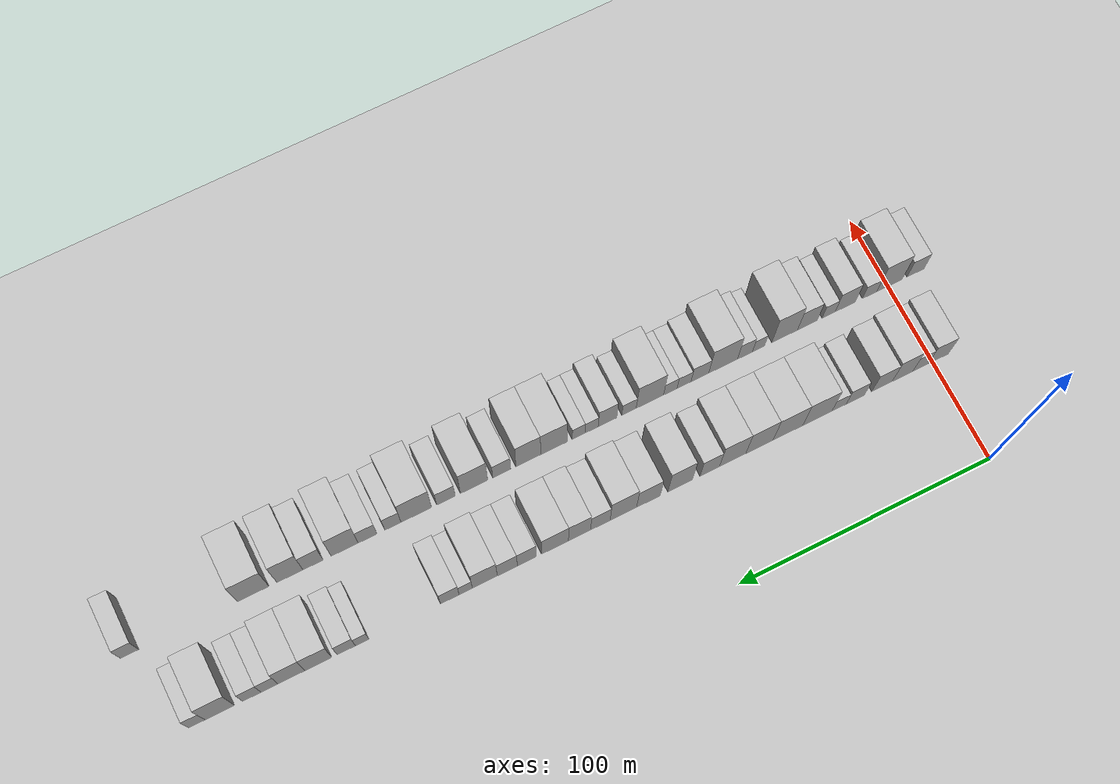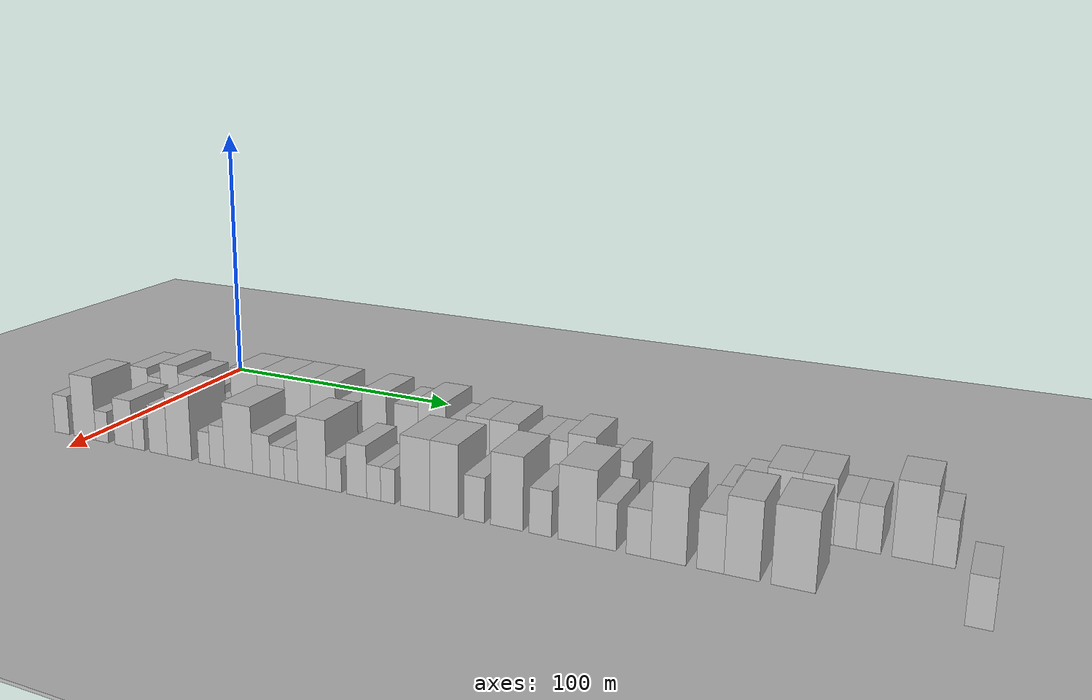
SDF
<sdf version="1.6">
 <world name="default">
  <include><name>ground_plane_1</name><uri>model://HANNAS_ground_plane</uri></include>
  <include>
   <name>ground_plane_2</name>
   <uri>model://HANNAS_ground_plane</uri>
   <pose>100 0 0  0 0 0</pose>
  </include>
  <model name="building_33">
   <static>1</static>
   <pose>50.0000 -2.1452 0 0.000000 0.000000 0.000000</pose>
   <link name="link">
    <pose>0 0 9.00 0 0 0</pose>
    <collision name="collision"><geometry><box><size>20.0000 8.3647 18.0000</size></box></geometry></collision>
    <visual name="visual">
     <cast_shadows>0</cast_shadows>
     <geometry><box><size>20.0000 8.3647 18.0000</size></box></geometry>
     <material>
      <script>
       <uri>model://HANNAS_wall/materials/scripts</uri>
       <uri>model://HANNAS_wall/materials/textures</uri>
       <name>vrc/HANNAS_wall</name>
      </script>
     </material>
    </visual>
   </link>
  </model>
  <model name="building_34">
   <static>1</static>
   <pose>50.0000 5.1659 0 0.000000 0.000000 0.000000</pose>
   <link name="link">
    <pose>0 0 7.50 0 0 0</pose>
    <collision name="collision"><geometry><box><size>20.0000 6.2576 15.0000</size></box></geometry></collision>
    <visual name="visual">
     <cast_shadows>0</cast_shadows>
     <geometry><box><size>20.0000 6.2576 15.0000</size></box></geometry>
     <material>
      <script>
       <uri>model://HANNAS_wall/materials/scripts</uri>
       <uri>model://HANNAS_wall/materials/textures</uri>
       <name>vrc/HANNAS_wall</name>
      </script>
     </material>
    </visual>
   </link>
  </model>
  <model name="building_35">
   <static>1</static>
   <pose>50.0000 12.5445 0 0.000000 0.000000 0.000000</pose>
   <link name="link">
    <pose>0 0 10.50 0 0 0</pose>
    <collision name="collision"><geometry><box><size>20.0000 8.4996 21.0000</size></box></geometry></collision>
    <visual name="visual">
     <cast_shadows>0</cast_shadows>
     <geometry><box><size>20.0000 8.4996 21.0000</size></box></geometry>
     <material>
      <script>
       <uri>model://HANNAS_wall/materials/scripts</uri>
       <uri>model://HANNAS_wall/materials/textures</uri>
       <name>vrc/HANNAS_wall</name>
      </script>
     </material>
    </visual>
   </link>
  </model>
  <model name="building_36">
   <static>1</static>
   <pose>50.0000 20.9216 0 0.000000 0.000000 0.000000</pose>
   <link name="link">
    <pose>0 0 9.00 0 0 0</pose>
    <collision name="collision"><geometry><box><size>20.0000 8.2547 18.0000</size></box></geometry></collision>
    <visual name="visual">
     <cast_shadows>0</cast_shadows>
     <geometry><box><size>20.0000 8.2547 18.0000</size></box></geometry>
     <material>
      <script>
       <uri>model://HANNAS_wall/materials/scripts</uri>
       <uri>model://HANNAS_wall/materials/textures</uri>
       <name>vrc/HANNAS_wall</name>
      </script>
     </material>
    </visual>
   </link>
  </model>
  <model name="building_37">
   <static>1</static>
   <pose>50.0000 31.7448 0 0.000000 0.000000 0.000000</pose>
   <link name="link">
    <pose>0 0 7.50 0 0 0</pose>
    <collision name="collision"><geometry><box><size>20.0000 7.3918 15.0000</size></box></geometry></collision>
    <visual name="visual">
     <cast_shadows>0</cast_shadows>
     <geometry><box><size>20.0000 7.3918 15.0000</size></box></geometry>
     <material>
      <script>
       <uri>model://HANNAS_wall/materials/scripts</uri>
       <uri>model://HANNAS_wall/materials/textures</uri>
       <name>vrc/HANNAS_wall</name>
      </script>
     </material>
    </visual>
   </link>
  </model>
  <model name="building_38">
   <static>1</static>
   <pose>50.0000 38.3287 0 0.000000 0.000000 0.000000</pose>
   <link name="link">
    <pose>0 0 6.00 0 0 0</pose>
    <collision name="collision"><geometry><box><size>20.0000 5.7759 12.0000</size></box></geometry></collision>
    <visual name="visual">
     <cast_shadows>0</cast_shadows>
     <geometry><box><size>20.0000 5.7759 12.0000</size></box></geometry>
     <material>
      <script>
       <uri>model://HANNAS_wall/materials/scripts</uri>
       <uri>model://HANNAS_wall/materials/textures</uri>
       <name>vrc/HANNAS_wall</name>
      </script>
     </material>
    </visual>
   </link>
  </model>
  <model name="building_39">
   <static>1</static>
   <pose>50.0000 47.1344 0 0.000000 0.000000 0.000000</pose>
   <link name="link">
    <pose>0 0 12.00 0 0 0</pose>
    <collision name="collision"><geometry><box><size>20.0000 11.8356 24.0000</size></box></geometry></collision>
    <visual name="visual">
     <cast_shadows>0</cast_shadows>
     <geometry><box><size>20.0000 11.8356 24.0000</size></box></geometry>
     <material>
      <script>
       <uri>model://HANNAS_wall/materials/scripts</uri>
       <uri>model://HANNAS_wall/materials/textures</uri>
       <name>vrc/HANNAS_wall</name>
      </script>
     </material>
    </visual>
   </link>
  </model>
  <model name="building_40">
   <static>1</static>
   <pose>50.0000 58.9942 0 0.000000 0.000000 0.000000</pose>
   <link name="link">
    <pose>0 0 12.00 0 0 0</pose>
    <collision name="collision"><geometry><box><size>20.0000 11.8840 24.0000</size></box></geometry></collision>
    <visual name="visual">
     <cast_shadows>0</cast_shadows>
     <geometry><box><size>20.0000 11.8840 24.0000</size></box></geometry>
     <material>
      <script>
       <uri>model://HANNAS_wall/materials/scripts</uri>
       <uri>model://HANNAS_wall/materials/textures</uri>
       <name>vrc/HANNAS_wall</name>
      </script>
     </material>
    </visual>
   </link>
  </model>
  <model name="building_41">
   <static>1</static>
   <pose>50.0000 70.3936 0 0.000000 0.000000 0.000000</pose>
   <link name="link">
    <pose>0 0 12.00 0 0 0</pose>
    <collision name="collision"><geometry><box><size>20.0000 10.9147 24.0000</size></box></geometry></collision>
    <visual name="visual">
     <cast_shadows>0</cast_shadows>
     <geometry><box><size>20.0000 10.9147 24.0000</size></box></geometry>
     <material>
      <script>
       <uri>model://HANNAS_wall/materials/scripts</uri>
       <uri>model://HANNAS_wall/materials/textures</uri>
       <name>vrc/HANNAS_wall</name>
      </script>
     </material>
    </visual>
   </link>
  </model>
  <model name="building_42">
   <static>1</static>
   <pose>50.0000 81.1011 0 0.000000 0.000000 0.000000</pose>
   <link name="link">
    <pose>0 0 12.00 0 0 0</pose>
    <collision name="collision"><geometry><box><size>20.0000 10.5003 24.0000</size></box></geometry></collision>
    <visual name="visual">
     <cast_shadows>0</cast_shadows>
     <geometry><box><size>20.0000 10.5003 24.0000</size></box></geometry>
     <material>
      <script>
       <uri>model://HANNAS_wall/materials/scripts</uri>
       <uri>model://HANNAS_wall/materials/textures</uri>
       <name>vrc/HANNAS_wall</name>
      </script>
     </material>
    </visual>
   </link>
  </model>
  <model name="building_43">
   <static>1</static>
   <pose>50.0000 90.2170 0 0.000000 0.000000 0.000000</pose>
   <link name="link">
    <pose>0 0 9.00 0 0 0</pose>
    <collision name="collision"><geometry><box><size>20.0000 7.7314 18.0000</size></box></geometry></collision>
    <visual name="visual">
     <cast_shadows>0</cast_shadows>
     <geometry><box><size>20.0000 7.7314 18.0000</size></box></geometry>
     <material>
      <script>
       <uri>model://HANNAS_wall/materials/scripts</uri>
       <uri>model://HANNAS_wall/materials/textures</uri>
       <name>vrc/HANNAS_wall</name>
      </script>
     </material>
    </visual>
   </link>
  </model>
  <model name="building_44">
   <static>1</static>
   <pose>50.0000 101.9413 0 0.000000 0.000000 0.000000</pose>
   <link name="link">
    <pose>0 0 12.00 0 0 0</pose>
    <collision name="collision"><geometry><box><size>20.0000 9.7173 24.0000</size></box></geometry></collision>
    <visual name="visual">
     <cast_shadows>0</cast_shadows>
     <geometry><box><size>20.0000 9.7173 24.0000</size></box></geometry>
     <material>
      <script>
       <uri>model://HANNAS_wall/materials/scripts</uri>
       <uri>model://HANNAS_wall/materials/textures</uri>
       <name>vrc/HANNAS_wall</name>
      </script>
     </material>
    </visual>
   </link>
  </model>
  <model name="building_45">
   <static>1</static>
   <pose>50.0000 114.4521 0 0.000000 0.000000 0.000000</pose>
   <link name="link">
    <pose>0 0 10.50 0 0 0</pose>
    <collision name="collision"><geometry><box><size>20.0000 9.3042 21.0000</size></box></geometry></collision>
    <visual name="visual">
     <cast_shadows>0</cast_shadows>
     <geometry><box><size>20.0000 9.3042 21.0000</size></box></geometry>
     <material>
      <script>
       <uri>model://HANNAS_wall/materials/scripts</uri>
       <uri>model://HANNAS_wall/materials/textures</uri>
       <name>vrc/HANNAS_wall</name>
      </script>
     </material>
    </visual>
   </link>
  </model>
  <model name="building_46">
   <static>1</static>
   <pose>50.0000 124.3024 0 0.000000 0.000000 0.000000</pose>
   <link name="link">
    <pose>0 0 12.00 0 0 0</pose>
    <collision name="collision"><geometry><box><size>20.0000 10.3964 24.0000</size></box></geometry></collision>
    <visual name="visual">
     <cast_shadows>0</cast_shadows>
     <geometry><box><size>20.0000 10.3964 24.0000</size></box></geometry>
     <material>
      <script>
       <uri>model://HANNAS_wall/materials/scripts</uri>
       <uri>model://HANNAS_wall/materials/textures</uri>
       <name>vrc/HANNAS_wall</name>
      </script>
     </material>
    </visual>
   </link>
  </model>
  <model name="building_47">
   <static>1</static>
   <pose>50.0000 133.2978 0 0.000000 0.000000 0.000000</pose>
   <link name="link">
    <pose>0 0 9.00 0 0 0</pose>
    <collision name="collision"><geometry><box><size>20.0000 7.5946 18.0000</size></box></geometry></collision>
    <visual name="visual">
     <cast_shadows>0</cast_shadows>
     <geometry><box><size>20.0000 7.5946 18.0000</size></box></geometry>
     <material>
      <script>
       <uri>model://HANNAS_wall/materials/scripts</uri>
       <uri>model://HANNAS_wall/materials/textures</uri>
       <name>vrc/HANNAS_wall</name>
      </script>
     </material>
    </visual>
   </link>
  </model>
  <model name="building_48">
   <static>1</static>
   <pose>50.0000 141.4103 0 0.000000 0.000000 0.000000</pose>
   <link name="link">
    <pose>0 0 10.50 0 0 0</pose>
    <collision name="collision"><geometry><box><size>20.0000 8.6304 21.0000</size></box></geometry></collision>
    <visual name="visual">
     <cast_shadows>0</cast_shadows>
     <geometry><box><size>20.0000 8.6304 21.0000</size></box></geometry>
     <material>
      <script>
       <uri>model://HANNAS_wall/materials/scripts</uri>
       <uri>model://HANNAS_wall/materials/textures</uri>
       <name>vrc/HANNAS_wall</name>
      </script>
     </material>
    </visual>
   </link>
  </model>
  <model name="building_49">
   <static>1</static>
   <pose>50.0000 150.9284 0 0.000000 0.000000 0.000000</pose>
   <link name="link">
    <pose>0 0 10.50 0 0 0</pose>
    <collision name="collision"><geometry><box><size>20.0000 10.4057 21.0000</size></box></geometry></collision>
    <visual name="visual">
     <cast_shadows>0</cast_shadows>
     <geometry><box><size>20.0000 10.4057 21.0000</size></box></geometry>
     <material>
      <script>
       <uri>model://HANNAS_wall/materials/scripts</uri>
       <uri>model://HANNAS_wall/materials/textures</uri>
       <name>vrc/HANNAS_wall</name>
      </script>
     </material>
    </visual>
   </link>
  </model>
  <model name="building_50">
   <static>1</static>
   <pose>50.0000 161.7996 0 0.000000 0.000000 0.000000</pose>
   <link name="link">
    <pose>0 0 9.00 0 0 0</pose>
    <collision name="collision"><geometry><box><size>20.0000 7.3368 18.0000</size></box></geometry></collision>
    <visual name="visual">
     <cast_shadows>0</cast_shadows>
     <geometry><box><size>20.0000 7.3368 18.0000</size></box></geometry>
     <material>
      <script>
       <uri>model://HANNAS_wall/materials/scripts</uri>
       <uri>model://HANNAS_wall/materials/textures</uri>
       <name>vrc/HANNAS_wall</name>
      </script>
     </material>
    </visual>
   </link>
  </model>
  <model name="building_51">
   <static>1</static>
   <pose>50.0000 169.3375 0 0.000000 0.000000 0.000000</pose>
   <link name="link">
    <pose>0 0 9.00 0 0 0</pose>
    <collision name="collision"><geometry><box><size>20.0000 7.7389 18.0000</size></box></geometry></collision>
    <visual name="visual">
     <cast_shadows>0</cast_shadows>
     <geometry><box><size>20.0000 7.7389 18.0000</size></box></geometry>
     <material>
      <script>
       <uri>model://HANNAS_wall/materials/scripts</uri>
       <uri>model://HANNAS_wall/materials/textures</uri>
       <name>vrc/HANNAS_wall</name>
      </script>
     </material>
    </visual>
   </link>
  </model>
  <model name="building_52">
   <static>1</static>
   <pose>50.0000 177.9718 0 0.000000 0.000000 0.000000</pose>
   <link name="link">
    <pose>0 0 10.50 0 0 0</pose>
    <collision name="collision"><geometry><box><size>20.0000 9.5297 21.0000</size></box></geometry></collision>
    <visual name="visual">
     <cast_shadows>0</cast_shadows>
     <geometry><box><size>20.0000 9.5297 21.0000</size></box></geometry>
     <material>
      <script>
       <uri>model://HANNAS_wall/materials/scripts</uri>
       <uri>model://HANNAS_wall/materials/textures</uri>
       <name>vrc/HANNAS_wall</name>
      </script>
     </material>
    </visual>
   </link>
  </model>
  <model name="building_53">
   <static>1</static>
   <pose>50.0000 185.2828 0 0.000000 0.000000 0.000000</pose>
   <link name="link">
    <pose>0 0 6.00 0 0 0</pose>
    <collision name="collision"><geometry><box><size>20.0000 5.0922 12.0000</size></box></geometry></collision>
    <visual name="visual">
     <cast_shadows>0</cast_shadows>
     <geometry><box><size>20.0000 5.0922 12.0000</size></box></geometry>
     <material>
      <script>
       <uri>model://HANNAS_wall/materials/scripts</uri>
       <uri>model://HANNAS_wall/materials/textures</uri>
       <name>vrc/HANNAS_wall</name>
      </script>
     </material>
    </visual>
   </link>
  </model>
  <model name="building_54">
   <static>1</static>
   <pose>50.0000 191.3628 0 0.000000 0.000000 0.000000</pose>
   <link name="link">
    <pose>0 0 7.50 0 0 0</pose>
    <collision name="collision"><geometry><box><size>20.0000 7.0677 15.0000</size></box></geometry></collision>
    <visual name="visual">
     <cast_shadows>0</cast_shadows>
     <geometry><box><size>20.0000 7.0677 15.0000</size></box></geometry>
     <material>
      <script>
       <uri>model://HANNAS_wall/materials/scripts</uri>
       <uri>model://HANNAS_wall/materials/textures</uri>
       <name>vrc/HANNAS_wall</name>
      </script>
     </material>
    </visual>
   </link>
  </model>
  <model name="building_55">
   <static>1</static>
   <pose>50.0000 224.5762 0 0.000000 0.000000 0.000000</pose>
   <link name="link">
    <pose>0 0 6.00 0 0 0</pose>
    <collision name="collision"><geometry><box><size>20.0000 5.1197 12.0000</size></box></geometry></collision>
    <visual name="visual">
     <cast_shadows>0</cast_shadows>
     <geometry><box><size>20.0000 5.1197 12.0000</size></box></geometry>
     <material>
      <script>
       <uri>model://HANNAS_wall/materials/scripts</uri>
       <uri>model://HANNAS_wall/materials/textures</uri>
       <name>vrc/HANNAS_wall</name>
      </script>
     </material>
    </visual>
   </link>
  </model>
  <model name="building_56">
   <static>1</static>
   <pose>50.0000 230.5793 0 0.000000 0.000000 0.000000</pose>
   <link name="link">
    <pose>0 0 7.50 0 0 0</pose>
    <collision name="collision"><geometry><box><size>20.0000 6.8864 15.0000</size></box></geometry></collision>
    <visual name="visual">
     <cast_shadows>0</cast_shadows>
     <geometry><box><size>20.0000 6.8864 15.0000</size></box></geometry>
     <material>
      <script>
       <uri>model://HANNAS_wall/materials/scripts</uri>
       <uri>model://HANNAS_wall/materials/textures</uri>
       <name>vrc/HANNAS_wall</name>
      </script>
     </material>
    </visual>
   </link>
  </model>
  <model name="building_57">
   <static>1</static>
   <pose>50.0000 241.0453 0 0.000000 0.000000 0.000000</pose>
   <link name="link">
    <pose>0 0 10.50 0 0 0</pose>
    <collision name="collision"><geometry><box><size>20.0000 10.0457 21.0000</size></box></geometry></collision>
    <visual name="visual">
     <cast_shadows>0</cast_shadows>
     <geometry><box><size>20.0000 10.0457 21.0000</size></box></geometry>
     <material>
      <script>
       <uri>model://HANNAS_wall/materials/scripts</uri>
       <uri>model://HANNAS_wall/materials/textures</uri>
       <name>vrc/HANNAS_wall</name>
      </script>
     </material>
    </visual>
   </link>
  </model>
  <model name="building_58">
   <static>1</static>
   <pose>50.0000 251.0858 0 0.000000 0.000000 0.000000</pose>
   <link name="link">
    <pose>0 0 10.50 0 0 0</pose>
    <collision name="collision"><geometry><box><size>20.0000 10.0353 21.0000</size></box></geometry></collision>
    <visual name="visual">
     <cast_shadows>0</cast_shadows>
     <geometry><box><size>20.0000 10.0353 21.0000</size></box></geometry>
     <material>
      <script>
       <uri>model://HANNAS_wall/materials/scripts</uri>
       <uri>model://HANNAS_wall/materials/textures</uri>
       <name>vrc/HANNAS_wall</name>
      </script>
     </material>
    </visual>
   </link>
  </model>
  <model name="building_59">
   <static>1</static>
   <pose>50.0000 259.2685 0 0.000000 0.000000 0.000000</pose>
   <link name="link">
    <pose>0 0 7.50 0 0 0</pose>
    <collision name="collision"><geometry><box><size>20.0000 6.3301 15.0000</size></box></geometry></collision>
    <visual name="visual">
     <cast_shadows>0</cast_shadows>
     <geometry><box><size>20.0000 6.3301 15.0000</size></box></geometry>
     <material>
      <script>
       <uri>model://HANNAS_wall/materials/scripts</uri>
       <uri>model://HANNAS_wall/materials/textures</uri>
       <name>vrc/HANNAS_wall</name>
      </script>
     </material>
    </visual>
   </link>
  </model>
  <model name="building_60">
   <static>1</static>
   <pose>50.0000 265.8349 0 0.000000 0.000000 0.000000</pose>
   <link name="link">
    <pose>0 0 7.50 0 0 0</pose>
    <collision name="collision"><geometry><box><size>20.0000 6.8027 15.0000</size></box></geometry></collision>
    <visual name="visual">
     <cast_shadows>0</cast_shadows>
     <geometry><box><size>20.0000 6.8027 15.0000</size></box></geometry>
     <material>
      <script>
       <uri>model://HANNAS_wall/materials/scripts</uri>
       <uri>model://HANNAS_wall/materials/textures</uri>
       <name>vrc/HANNAS_wall</name>
      </script>
     </material>
    </visual>
   </link>
  </model>
  <model name="building_61">
   <static>1</static>
   <pose>50.0000 277.6647 0 0.000000 0.000000 0.000000</pose>
   <link name="link">
    <pose>0 0 12.00 0 0 0</pose>
    <collision name="collision"><geometry><box><size>20.0000 10.8569 24.0000</size></box></geometry></collision>
    <visual name="visual">
     <cast_shadows>0</cast_shadows>
     <geometry><box><size>20.0000 10.8569 24.0000</size></box></geometry>
     <material>
      <script>
       <uri>model://HANNAS_wall/materials/scripts</uri>
       <uri>model://HANNAS_wall/materials/textures</uri>
       <name>vrc/HANNAS_wall</name>
      </script>
     </material>
    </visual>
   </link>
  </model>
  <model name="building_62">
   <static>1</static>
   <pose>50.0000 286.1082 0 0.000000 0.000000 0.000000</pose>
   <link name="link">
    <pose>0 0 7.50 0 0 0</pose>
    <collision name="collision"><geometry><box><size>20.0000 6.0302 15.0000</size></box></geometry></collision>
    <visual name="visual">
     <cast_shadows>0</cast_shadows>
     <geometry><box><size>20.0000 6.0302 15.0000</size></box></geometry>
     <material>
      <script>
       <uri>model://HANNAS_wall/materials/scripts</uri>
       <uri>model://HANNAS_wall/materials/textures</uri>
       <name>vrc/HANNAS_wall</name>
      </script>
     </material>
    </visual>
   </link>
  </model>
  <model name="building_92">
   <static>1</static>
   <pose>82.0000 -11.1395 0 0.000000 0.000000 0.000000</pose>
   <link name="link">
    <pose>0 0 7.50 0 0 0</pose>
    <collision name="collision"><geometry><box><size>20.0000 7.1054 15.0000</size></box></geometry></collision>
    <visual name="visual">
     <cast_shadows>0</cast_shadows>
     <geometry><box><size>20.0000 7.1054 15.0000</size></box></geometry>
     <material>
      <script>
       <uri>model://HANNAS_wall/materials/scripts</uri>
       <uri>model://HANNAS_wall/materials/textures</uri>
       <name>vrc/HANNAS_wall</name>
      </script>
     </material>
    </visual>
   </link>
  </model>
  <model name="building_93">
   <static>1</static>
   <pose>82.0000 -0.3200 0 0.000000 0.000000 0.000000</pose>
   <link name="link">
    <pose>0 0 12.00 0 0 0</pose>
    <collision name="collision"><geometry><box><size>20.0000 10.5335 24.0000</size></box></geometry></collision>
    <visual name="visual">
     <cast_shadows>0</cast_shadows>
     <geometry><box><size>20.0000 10.5335 24.0000</size></box></geometry>
     <material>
      <script>
       <uri>model://HANNAS_wall/materials/scripts</uri>
       <uri>model://HANNAS_wall/materials/textures</uri>
       <name>vrc/HANNAS_wall</name>
      </script>
     </material>
    </visual>
   </link>
  </model>
  <model name="building_94">
   <static>1</static>
   <pose>82.0000 7.8883 0 0.000000 0.000000 0.000000</pose>
   <link name="link">
    <pose>0 0 6.00 0 0 0</pose>
    <collision name="collision"><geometry><box><size>20.0000 5.8832 12.0000</size></box></geometry></collision>
    <visual name="visual">
     <cast_shadows>0</cast_shadows>
     <geometry><box><size>20.0000 5.8832 12.0000</size></box></geometry>
     <material>
      <script>
       <uri>model://HANNAS_wall/materials/scripts</uri>
       <uri>model://HANNAS_wall/materials/textures</uri>
       <name>vrc/HANNAS_wall</name>
      </script>
     </material>
    </visual>
   </link>
  </model>
  <model name="building_95">
   <static>1</static>
   <pose>82.0000 17.9751 0 0.000000 0.000000 0.000000</pose>
   <link name="link">
    <pose>0 0 9.00 0 0 0</pose>
    <collision name="collision"><geometry><box><size>20.0000 8.2902 18.0000</size></box></geometry></collision>
    <visual name="visual">
     <cast_shadows>0</cast_shadows>
     <geometry><box><size>20.0000 8.2902 18.0000</size></box></geometry>
     <material>
      <script>
       <uri>model://HANNAS_wall/materials/scripts</uri>
       <uri>model://HANNAS_wall/materials/textures</uri>
       <name>vrc/HANNAS_wall</name>
      </script>
     </material>
    </visual>
   </link>
  </model>
  <model name="building_96">
   <static>1</static>
   <pose>82.0000 24.7980 0 0.000000 0.000000 0.000000</pose>
   <link name="link">
    <pose>0 0 6.00 0 0 0</pose>
    <collision name="collision"><geometry><box><size>20.0000 5.3557 12.0000</size></box></geometry></collision>
    <visual name="visual">
     <cast_shadows>0</cast_shadows>
     <geometry><box><size>20.0000 5.3557 12.0000</size></box></geometry>
     <material>
      <script>
       <uri>model://HANNAS_wall/materials/scripts</uri>
       <uri>model://HANNAS_wall/materials/textures</uri>
       <name>vrc/HANNAS_wall</name>
      </script>
     </material>
    </visual>
   </link>
  </model>
  <model name="building_97">
   <static>1</static>
   <pose>82.0000 33.5134 0 0.000000 0.000000 0.000000</pose>
   <link name="link">
    <pose>0 0 9.00 0 0 0</pose>
    <collision name="collision"><geometry><box><size>20.0000 8.0751 18.0000</size></box></geometry></collision>
    <visual name="visual">
     <cast_shadows>0</cast_shadows>
     <geometry><box><size>20.0000 8.0751 18.0000</size></box></geometry>
     <material>
      <script>
       <uri>model://HANNAS_wall/materials/scripts</uri>
       <uri>model://HANNAS_wall/materials/textures</uri>
       <name>vrc/HANNAS_wall</name>
      </script>
     </material>
    </visual>
   </link>
  </model>
  <model name="building_98">
   <static>1</static>
   <pose>82.0000 42.7894 0 0.000000 0.000000 0.000000</pose>
   <link name="link">
    <pose>0 0 12.00 0 0 0</pose>
    <collision name="collision"><geometry><box><size>20.0000 10.4771 24.0000</size></box></geometry></collision>
    <visual name="visual">
     <cast_shadows>0</cast_shadows>
     <geometry><box><size>20.0000 10.4771 24.0000</size></box></geometry>
     <material>
      <script>
       <uri>model://HANNAS_wall/materials/scripts</uri>
       <uri>model://HANNAS_wall/materials/textures</uri>
       <name>vrc/HANNAS_wall</name>
      </script>
     </material>
    </visual>
   </link>
  </model>
  <model name="building_99">
   <static>1</static>
   <pose>82.0000 53.4756 0 0.000000 0.000000 0.000000</pose>
   <link name="link">
    <pose>0 0 6.00 0 0 0</pose>
    <collision name="collision"><geometry><box><size>20.0000 4.8952 12.0000</size></box></geometry></collision>
    <visual name="visual">
     <cast_shadows>0</cast_shadows>
     <geometry><box><size>20.0000 4.8952 12.0000</size></box></geometry>
     <material>
      <script>
       <uri>model://HANNAS_wall/materials/scripts</uri>
       <uri>model://HANNAS_wall/materials/textures</uri>
       <name>vrc/HANNAS_wall</name>
      </script>
     </material>
    </visual>
   </link>
  </model>
  <model name="building_100">
   <static>1</static>
   <pose>82.0000 58.9572 0 0.000000 0.000000 0.000000</pose>
   <link name="link">
    <pose>0 0 7.50 0 0 0</pose>
    <collision name="collision"><geometry><box><size>20.0000 6.0681 15.0000</size></box></geometry></collision>
    <visual name="visual">
     <cast_shadows>0</cast_shadows>
     <geometry><box><size>20.0000 6.0681 15.0000</size></box></geometry>
     <material>
      <script>
       <uri>model://HANNAS_wall/materials/scripts</uri>
       <uri>model://HANNAS_wall/materials/textures</uri>
       <name>vrc/HANNAS_wall</name>
      </script>
     </material>
    </visual>
   </link>
  </model>
  <model name="building_101">
   <static>1</static>
   <pose>82.0000 67.7943 0 0.000000 0.000000 0.000000</pose>
   <link name="link">
    <pose>0 0 12.00 0 0 0</pose>
    <collision name="collision"><geometry><box><size>20.0000 11.6060 24.0000</size></box></geometry></collision>
    <visual name="visual">
     <cast_shadows>0</cast_shadows>
     <geometry><box><size>20.0000 11.6060 24.0000</size></box></geometry>
     <material>
      <script>
       <uri>model://HANNAS_wall/materials/scripts</uri>
       <uri>model://HANNAS_wall/materials/textures</uri>
       <name>vrc/HANNAS_wall</name>
      </script>
     </material>
    </visual>
   </link>
  </model>
  <model name="building_102">
   <static>1</static>
   <pose>82.0000 77.1590 0 0.000000 0.000000 0.000000</pose>
   <link name="link">
    <pose>0 0 7.50 0 0 0</pose>
    <collision name="collision"><geometry><box><size>20.0000 7.1234 15.0000</size></box></geometry></collision>
    <visual name="visual">
     <cast_shadows>0</cast_shadows>
     <geometry><box><size>20.0000 7.1234 15.0000</size></box></geometry>
     <material>
      <script>
       <uri>model://HANNAS_wall/materials/scripts</uri>
       <uri>model://HANNAS_wall/materials/textures</uri>
       <name>vrc/HANNAS_wall</name>
      </script>
     </material>
    </visual>
   </link>
  </model>
  <model name="building_103">
   <static>1</static>
   <pose>82.0000 83.5299 0 0.000000 0.000000 0.000000</pose>
   <link name="link">
    <pose>0 0 6.00 0 0 0</pose>
    <collision name="collision"><geometry><box><size>20.0000 5.6184 12.0000</size></box></geometry></collision>
    <visual name="visual">
     <cast_shadows>0</cast_shadows>
     <geometry><box><size>20.0000 5.6184 12.0000</size></box></geometry>
     <material>
      <script>
       <uri>model://HANNAS_wall/materials/scripts</uri>
       <uri>model://HANNAS_wall/materials/textures</uri>
       <name>vrc/HANNAS_wall</name>
      </script>
     </material>
    </visual>
   </link>
  </model>
  <model name="building_104">
   <static>1</static>
   <pose>82.0000 89.0374 0 0.000000 0.000000 0.000000</pose>
   <link name="link">
    <pose>0 0 6.00 0 0 0</pose>
    <collision name="collision"><geometry><box><size>20.0000 5.3967 12.0000</size></box></geometry></collision>
    <visual name="visual">
     <cast_shadows>0</cast_shadows>
     <geometry><box><size>20.0000 5.3967 12.0000</size></box></geometry>
     <material>
      <script>
       <uri>model://HANNAS_wall/materials/scripts</uri>
       <uri>model://HANNAS_wall/materials/textures</uri>
       <name>vrc/HANNAS_wall</name>
      </script>
     </material>
    </visual>
   </link>
  </model>
  <model name="building_105">
   <static>1</static>
   <pose>82.0000 97.2078 0 0.000000 0.000000 0.000000</pose>
   <link name="link">
    <pose>0 0 12.00 0 0 0</pose>
    <collision name="collision"><geometry><box><size>20.0000 10.9441 24.0000</size></box></geometry></collision>
    <visual name="visual">
     <cast_shadows>0</cast_shadows>
     <geometry><box><size>20.0000 10.9441 24.0000</size></box></geometry>
     <material>
      <script>
       <uri>model://HANNAS_wall/materials/scripts</uri>
       <uri>model://HANNAS_wall/materials/textures</uri>
       <name>vrc/HANNAS_wall</name>
      </script>
     </material>
    </visual>
   </link>
  </model>
  <model name="building_106">
   <static>1</static>
   <pose>82.0000 105.5469 0 0.000000 0.000000 0.000000</pose>
   <link name="link">
    <pose>0 0 6.00 0 0 0</pose>
    <collision name="collision"><geometry><box><size>20.0000 5.7340 12.0000</size></box></geometry></collision>
    <visual name="visual">
     <cast_shadows>0</cast_shadows>
     <geometry><box><size>20.0000 5.7340 12.0000</size></box></geometry>
     <material>
      <script>
       <uri>model://HANNAS_wall/materials/scripts</uri>
       <uri>model://HANNAS_wall/materials/textures</uri>
       <name>vrc/HANNAS_wall</name>
      </script>
     </material>
    </visual>
   </link>
  </model>
  <model name="building_107">
   <static>1</static>
   <pose>82.0000 114.1042 0 0.000000 0.000000 0.000000</pose>
   <link name="link">
    <pose>0 0 9.00 0 0 0</pose>
    <collision name="collision"><geometry><box><size>20.0000 7.3806 18.0000</size></box></geometry></collision>
    <visual name="visual">
     <cast_shadows>0</cast_shadows>
     <geometry><box><size>20.0000 7.3806 18.0000</size></box></geometry>
     <material>
      <script>
       <uri>model://HANNAS_wall/materials/scripts</uri>
       <uri>model://HANNAS_wall/materials/textures</uri>
       <name>vrc/HANNAS_wall</name>
      </script>
     </material>
    </visual>
   </link>
  </model>
  <model name="building_108">
   <static>1</static>
   <pose>82.0000 120.3796 0 0.000000 0.000000 0.000000</pose>
   <link name="link">
    <pose>0 0 6.00 0 0 0</pose>
    <collision name="collision"><geometry><box><size>20.0000 5.1702 12.0000</size></box></geometry></collision>
    <visual name="visual">
     <cast_shadows>0</cast_shadows>
     <geometry><box><size>20.0000 5.1702 12.0000</size></box></geometry>
     <material>
      <script>
       <uri>model://HANNAS_wall/materials/scripts</uri>
       <uri>model://HANNAS_wall/materials/textures</uri>
       <name>vrc/HANNAS_wall</name>
      </script>
     </material>
    </visual>
   </link>
  </model>
  <model name="building_109">
   <static>1</static>
   <pose>82.0000 125.5265 0 0.000000 0.000000 0.000000</pose>
   <link name="link">
    <pose>0 0 6.00 0 0 0</pose>
    <collision name="collision"><geometry><box><size>20.0000 5.1237 12.0000</size></box></geometry></collision>
    <visual name="visual">
     <cast_shadows>0</cast_shadows>
     <geometry><box><size>20.0000 5.1237 12.0000</size></box></geometry>
     <material>
      <script>
       <uri>model://HANNAS_wall/materials/scripts</uri>
       <uri>model://HANNAS_wall/materials/textures</uri>
       <name>vrc/HANNAS_wall</name>
      </script>
     </material>
    </visual>
   </link>
  </model>
  <model name="building_110">
   <static>1</static>
   <pose>82.0000 135.2935 0 0.000000 0.000000 0.000000</pose>
   <link name="link">
    <pose>0 0 12.00 0 0 0</pose>
    <collision name="collision"><geometry><box><size>20.0000 10.4103 24.0000</size></box></geometry></collision>
    <visual name="visual">
     <cast_shadows>0</cast_shadows>
     <geometry><box><size>20.0000 10.4103 24.0000</size></box></geometry>
     <material>
      <script>
       <uri>model://HANNAS_wall/materials/scripts</uri>
       <uri>model://HANNAS_wall/materials/textures</uri>
       <name>vrc/HANNAS_wall</name>
      </script>
     </material>
    </visual>
   </link>
  </model>
  <model name="building_111">
   <static>1</static>
   <pose>82.0000 145.3542 0 0.000000 0.000000 0.000000</pose>
   <link name="link">
    <pose>0 0 12.00 0 0 0</pose>
    <collision name="collision"><geometry><box><size>20.0000 9.7109 24.0000</size></box></geometry></collision>
    <visual name="visual">
     <cast_shadows>0</cast_shadows>
     <geometry><box><size>20.0000 9.7109 24.0000</size></box></geometry>
     <material>
      <script>
       <uri>model://HANNAS_wall/materials/scripts</uri>
       <uri>model://HANNAS_wall/materials/textures</uri>
       <name>vrc/HANNAS_wall</name>
      </script>
     </material>
    </visual>
   </link>
  </model>
  <model name="building_112">
   <static>1</static>
   <pose>82.0000 155.7086 0 0.000000 0.000000 0.000000</pose>
   <link name="link">
    <pose>0 0 7.50 0 0 0</pose>
    <collision name="collision"><geometry><box><size>20.0000 6.9978 15.0000</size></box></geometry></collision>
    <visual name="visual">
     <cast_shadows>0</cast_shadows>
     <geometry><box><size>20.0000 6.9978 15.0000</size></box></geometry>
     <material>
      <script>
       <uri>model://HANNAS_wall/materials/scripts</uri>
       <uri>model://HANNAS_wall/materials/textures</uri>
       <name>vrc/HANNAS_wall</name>
      </script>
     </material>
    </visual>
   </link>
  </model>
  <model name="building_113">
   <static>1</static>
   <pose>82.0000 166.5020 0 0.000000 0.000000 0.000000</pose>
   <link name="link">
    <pose>0 0 12.00 0 0 0</pose>
    <collision name="collision"><geometry><box><size>20.0000 10.5891 24.0000</size></box></geometry></collision>
    <visual name="visual">
     <cast_shadows>0</cast_shadows>
     <geometry><box><size>20.0000 10.5891 24.0000</size></box></geometry>
     <material>
      <script>
       <uri>model://HANNAS_wall/materials/scripts</uri>
       <uri>model://HANNAS_wall/materials/textures</uri>
       <name>vrc/HANNAS_wall</name>
      </script>
     </material>
    </visual>
   </link>
  </model>
  <model name="building_114">
   <static>1</static>
   <pose>82.0000 177.3890 0 0.000000 0.000000 0.000000</pose>
   <link name="link">
    <pose>0 0 7.50 0 0 0</pose>
    <collision name="collision"><geometry><box><size>20.0000 7.1849 15.0000</size></box></geometry></collision>
    <visual name="visual">
     <cast_shadows>0</cast_shadows>
     <geometry><box><size>20.0000 7.1849 15.0000</size></box></geometry>
     <material>
      <script>
       <uri>model://HANNAS_wall/materials/scripts</uri>
       <uri>model://HANNAS_wall/materials/textures</uri>
       <name>vrc/HANNAS_wall</name>
      </script>
     </material>
    </visual>
   </link>
  </model>
  <model name="building_115">
   <static>1</static>
   <pose>82.0000 188.8886 0 0.000000 0.000000 0.000000</pose>
   <link name="link">
    <pose>0 0 12.00 0 0 0</pose>
    <collision name="collision"><geometry><box><size>20.0000 11.8142 24.0000</size></box></geometry></collision>
    <visual name="visual">
     <cast_shadows>0</cast_shadows>
     <geometry><box><size>20.0000 11.8142 24.0000</size></box></geometry>
     <material>
      <script>
       <uri>model://HANNAS_wall/materials/scripts</uri>
       <uri>model://HANNAS_wall/materials/textures</uri>
       <name>vrc/HANNAS_wall</name>
      </script>
     </material>
    </visual>
   </link>
  </model>
  <model name="building_116">
   <static>1</static>
   <pose>82.0000 197.8862 0 0.000000 0.000000 0.000000</pose>
   <link name="link">
    <pose>0 0 7.50 0 0 0</pose>
    <collision name="collision"><geometry><box><size>20.0000 6.1809 15.0000</size></box></geometry></collision>
    <visual name="visual">
     <cast_shadows>0</cast_shadows>
     <geometry><box><size>20.0000 6.1809 15.0000</size></box></geometry>
     <material>
      <script>
       <uri>model://HANNAS_wall/materials/scripts</uri>
       <uri>model://HANNAS_wall/materials/textures</uri>
       <name>vrc/HANNAS_wall</name>
      </script>
     </material>
    </visual>
   </link>
  </model>
  <model name="building_117">
   <static>1</static>
   <pose>82.0000 207.5832 0 0.000000 0.000000 0.000000</pose>
   <link name="link">
    <pose>0 0 7.50 0 0 0</pose>
    <collision name="collision"><geometry><box><size>20.0000 7.2133 15.0000</size></box></geometry></collision>
    <visual name="visual">
     <cast_shadows>0</cast_shadows>
     <geometry><box><size>20.0000 7.2133 15.0000</size></box></geometry>
     <material>
      <script>
       <uri>model://HANNAS_wall/materials/scripts</uri>
       <uri>model://HANNAS_wall/materials/textures</uri>
       <name>vrc/HANNAS_wall</name>
      </script>
     </material>
    </visual>
   </link>
  </model>
  <model name="building_118">
   <static>1</static>
   <pose>82.0000 216.3632 0 0.000000 0.000000 0.000000</pose>
   <link name="link">
    <pose>0 0 12.00 0 0 0</pose>
    <collision name="collision"><geometry><box><size>20.0000 10.3466 24.0000</size></box></geometry></collision>
    <visual name="visual">
     <cast_shadows>0</cast_shadows>
     <geometry><box><size>20.0000 10.3466 24.0000</size></box></geometry>
     <material>
      <script>
       <uri>model://HANNAS_wall/materials/scripts</uri>
       <uri>model://HANNAS_wall/materials/textures</uri>
       <name>vrc/HANNAS_wall</name>
      </script>
     </material>
    </visual>
   </link>
  </model>
  <model name="building_119">
   <static>1</static>
   <pose>82.0000 228.3818 0 0.000000 0.000000 0.000000</pose>
   <link name="link">
    <pose>0 0 9.00 0 0 0</pose>
    <collision name="collision"><geometry><box><size>20.0000 7.6907 18.0000</size></box></geometry></collision>
    <visual name="visual">
     <cast_shadows>0</cast_shadows>
     <geometry><box><size>20.0000 7.6907 18.0000</size></box></geometry>
     <material>
      <script>
       <uri>model://HANNAS_wall/materials/scripts</uri>
       <uri>model://HANNAS_wall/materials/textures</uri>
       <name>vrc/HANNAS_wall</name>
      </script>
     </material>
    </visual>
   </link>
  </model>
  <model name="building_120">
   <static>1</static>
   <pose>82.0000 237.1584 0 0.000000 0.000000 0.000000</pose>
   <link name="link">
    <pose>0 0 12.00 0 0 0</pose>
    <collision name="collision"><geometry><box><size>20.0000 9.8624 24.0000</size></box></geometry></collision>
    <visual name="visual">
     <cast_shadows>0</cast_shadows>
     <geometry><box><size>20.0000 9.8624 24.0000</size></box></geometry>
     <material>
      <script>
       <uri>model://HANNAS_wall/materials/scripts</uri>
       <uri>model://HANNAS_wall/materials/textures</uri>
       <name>vrc/HANNAS_wall</name>
      </script>
     </material>
    </visual>
   </link>
  </model>
  <model name="building_121">
   <static>1</static>
   <pose>82.0000 251.0252 0 0.000000 0.000000 0.000000</pose>
   <link name="link">
    <pose>0 0 12.00 0 0 0</pose>
    <collision name="collision"><geometry><box><size>20.0000 11.8711 24.0000</size></box></geometry></collision>
    <visual name="visual">
     <cast_shadows>0</cast_shadows>
     <geometry><box><size>20.0000 11.8711 24.0000</size></box></geometry>
     <material>
      <script>
       <uri>model://HANNAS_wall/materials/scripts</uri>
       <uri>model://HANNAS_wall/materials/textures</uri>
       <name>vrc/HANNAS_wall</name>
      </script>
     </material>
    </visual>
   </link>
  </model>
  <model name="building_122">
   <static>1</static>
   <pose>82.0000 297.1240 0 0.000000 0.000000 0.000000</pose>
   <link name="link">
    <pose>0 0 7.50 0 0 0</pose>
    <collision name="collision"><geometry><box><size>20.0000 6.7755 15.0000</size></box></geometry></collision>
    <visual name="visual">
     <cast_shadows>0</cast_shadows>
     <geometry><box><size>20.0000 6.7755 15.0000</size></box></geometry>
     <material>
      <script>
       <uri>model://HANNAS_wall/materials/scripts</uri>
       <uri>model://HANNAS_wall/materials/textures</uri>
       <name>vrc/HANNAS_wall</name>
      </script>
     </material>
    </visual>
   </link>
  </model>
 </world>
</sdf>
